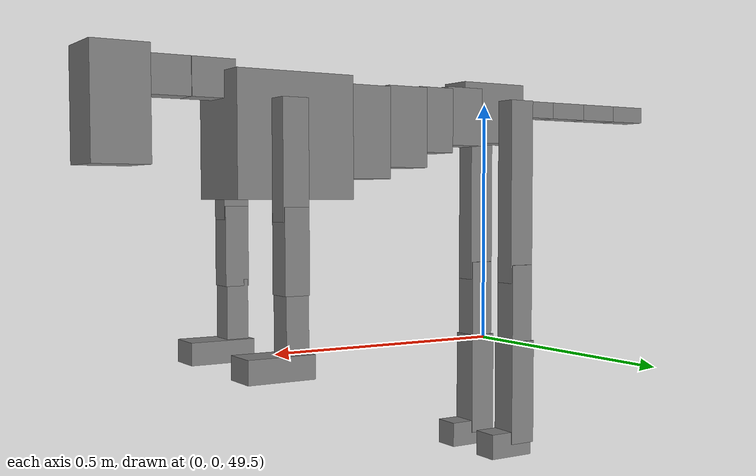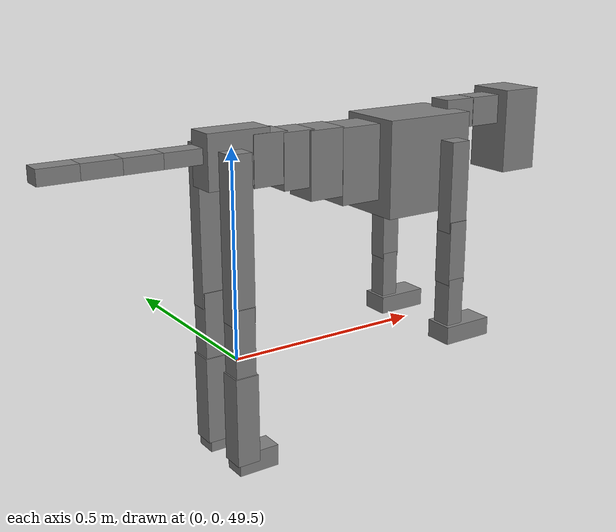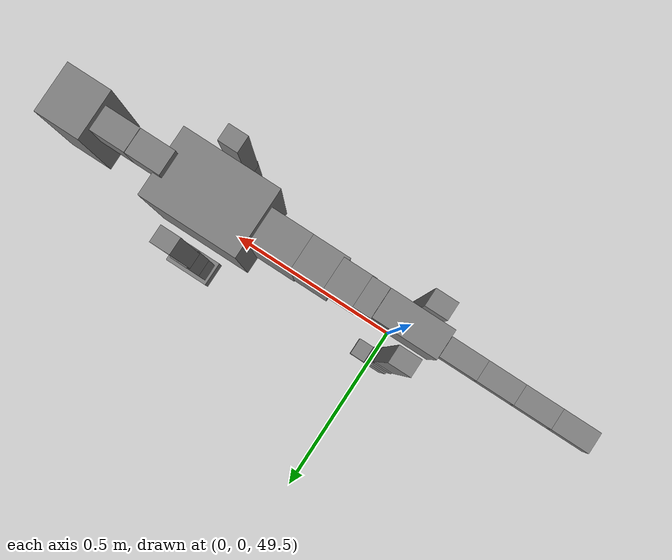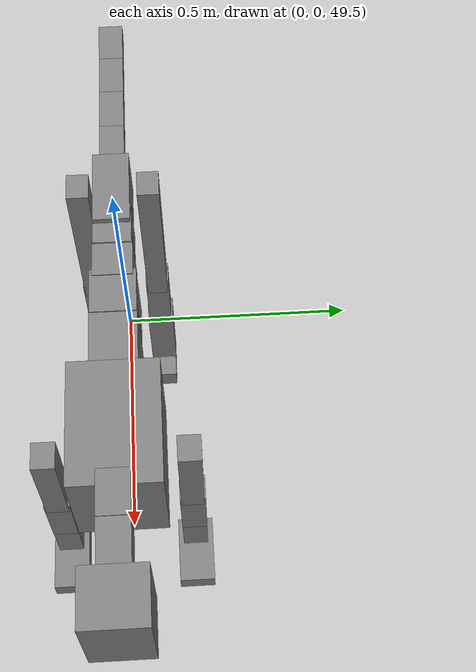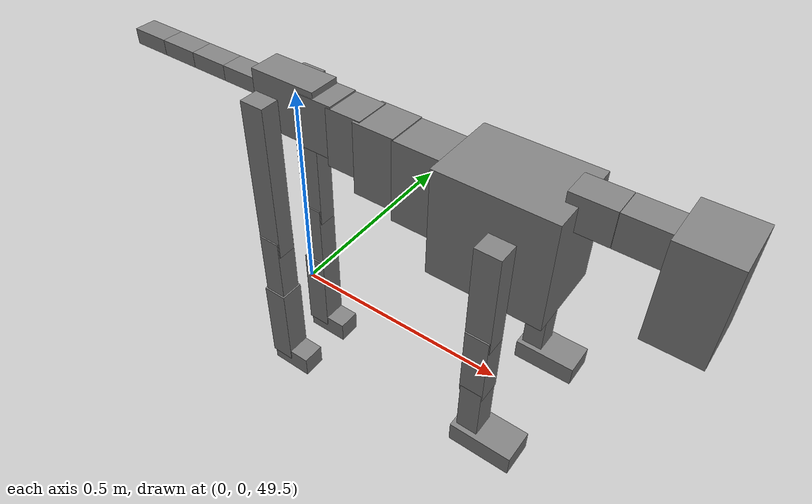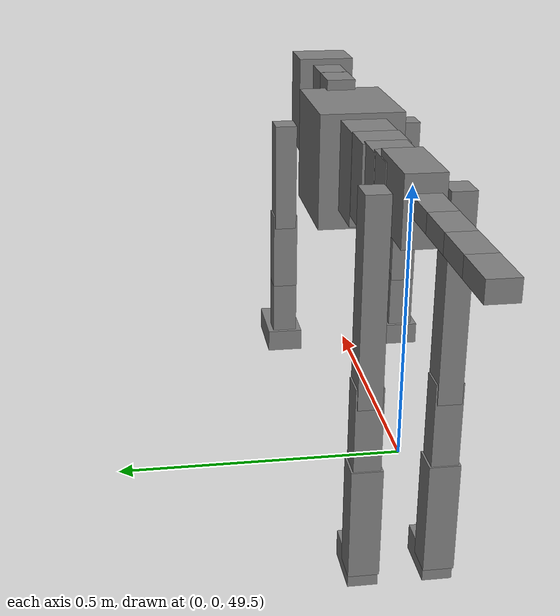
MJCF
<mujoco model="dog">

    <default>
        <joint armature="0.02" stiffness="1" damping="0.2" limited="true"/>
        <geom condim="3" friction="1 0.05 0.05" margin="0.01"/>
        <motor ctrllimited="true" ctrlrange="-1.0 1.0" forcelimited="true" gear="50"/>
    </default>

    <compiler inertiafromgeom="true" angle="radian"/>

    <option timestep="0.016" iterations="50" tolerance="1e-10" solver="Newton" jacobian="dense" cone="pyramidal"/>

    <size nconmax="20000" njmax="60000" nstack="5000000"/>
    <visual>
        <map force="0.1" zfar="30"/>
        <rgba haze="0.15 0.25 0.35 1"/>
        <quality shadowsize="2048"/>
        <global offwidth="800" offheight="800"/>
    </visual>

    <asset>
        <texture type="skybox" builtin="gradient" rgb1="0.3 0.5 0.7" rgb2="0 0 0" width="512" height="512"/>
        <texture name="texplane" type="2d" builtin="checker" rgb1=".2 .3 .4" rgb2=".1 0.15 0.2" width="512" height="512"
                 mark="cross" markrgb=".8 .8 .8"/>
        <texture name="texgeom" type="cube" builtin="flat" mark="cross" width="127" height="1278" rgb1="0.8 0.6 0.4"
                 rgb2="0.8 0.6 0.4" markrgb="1 1 1" random="0.01"/>

        <material name="matplane" reflectance="0.3" texture="texplane" texrepeat="1 1" texuniform="true"/>
        <material name="matgeom" texture="texgeom" texuniform="true" rgba="0.8 0.6 .4 1"/>
    </asset>

    <worldbody>
        <geom name="floor" pos="0 0 0" size="0 0 .25" type="plane" material="matplane" condim="3"/>

        <light directional="false" diffuse=".2 .2 .2" specular="0 0 0" pos="0 0 5" dir="0 0 -1" castshadow="false"/>
        <light mode="targetbodycom" target="torso" directional="false" diffuse=".8 .8 .8" specular="0.3 0.3 0.3"
               pos="0 0 4.0" dir="0 0 -1"/>

        <body name="root" pos="0 0 50">
            <freejoint name="root_1"/>
            <geom type="box" pos="0 0 -0.02" size="0.0774  0.0358  0.063" density="2030"/>

            <body name="spine1" pos="0.054 0 0">
                <joint name="spine1_y" axis="0 1 0" range="0 0.7" limited="true"/>
                <geom type="box" pos="0.02375 0 -0.03" size="0.04375  0.0375  0.05985" density="2030"/>

                <body name="spine2" pos="0.0612 0 0">
                    <joint name="spine2_y" axis="0 1 0" range="-0.15 0.15" limited="true"/>
                    <geom type="box" pos="0.03555  0  -0.04" size="0.04055  0.039  0.06615" density="2030"/>

                    <body name="spine3" pos="0.0730 0 0">
                        <joint name="spine3_y" axis="0 1 0" range="-0.15 0.15" limited="true"/>
                        <geom type="box" pos="0.03555  0  -0.057" size="0.04555  0.0445  0.081" density="2030"/>

                        <body name="spine4" pos="0.0780 0 0">
                            <joint name="spine4_y" axis="0 1 0" range="-0.15 0.15" limited="true"/>
                            <geom type="box" pos="0.05265  0  -0.07" size="0.05265  0.045  0.09135" density="2030"/>

                            <body name="torso" pos="0.1082 0 0">
                                <joint name="torso_y" axis="0 1 0" range="-0.15 0.15" limited="true"/>
                                <geom type="box" pos="0.11925  0  -0.085" size="0.11925  0.085  0.11745"
                                      density="2030"/>

                                <body name="neck1" pos="0.2160  0   0.0180">
                                    <joint name="neck1_y" axis="0 1 0" range="-1.2  -1" limited="true"/>
                                    <geom type="box" pos="0.0423  0  0" size="0.0423  0.03  0.036" density="2325"/>

                                    <body name="neck2" pos="0.0853  0  0">
                                        <joint name="neck2_y" axis="0 1 0" range="0.1  0" limited="true"/>
                                        <geom type="box" pos="0.0423  0  0" size="0.0423  0.03  0.036" density="2325"/>

                                        <body name="head" pos="0.0853  0  0">
                                            <joint name="head_y" axis="0 1 0" range="-0.3  -0.2" limited="true"/>
                                            <geom type="box" pos="0.0531  0  -0.055" size="0.0531  0.06  0.1044"
                                                  density="4030"/>

                                        </body>
                                    </body>
                                </body>

                                <body name="front_shoulder" pos="0.156  0   -0.0480">
                                    <joint name="front_shoulder_y" axis="0 1 0" range="-1 1.5" limited="true"/>
                                    <geom type="box" pos="0 0.13 -0.0838" size="0.0256  0.0219  0.1104" density="1158"/>
                                    <geom type="box" pos="0 -0.13 -0.0838" size="0.0256  0.0219  0.1104"
                                          density="1158"/>

                                    <body name="front_elbow" pos="0  0  -0.1675">
                                        <joint name="front_elbow_y" axis="0 1 0" range="-2 0" limited="true"/>
                                        <geom type="box" pos="0 0.13 -0.0790" size="0.0243  0.0249  0.0790"
                                              density="1081"/>
                                        <geom type="box" pos="0 -0.13 -0.0790" size="0.0243  0.0249  0.0790"
                                              density="1081"/>

                                        <body name="front_wrist" pos="0  0  -0.1581">
                                            <joint name="front_wrist_y" axis="0 1 0" range="-0.2 0" limited="true"/>
                                            <geom type="box" pos="0 0.13 -0.0601" size="0.0224  0.0249  0.0732"
                                                  density="1664"/>
                                            <geom type="box" pos="0 -0.13 -0.0601" size="0.0224  0.0249  0.0732"
                                                  density="1664"/>

                                            <body name="front_finger_end" pos="0  0  -0.1201">
                                                <joint name="front_finger_y" axis="0 1 0" range="-0.4 1"
                                                       limited="true"/>
                                                <geom type="box" pos="0.0359  0.13  -0.0073"
                                                      size="0.0658  0.0359  0.0223" density="1515"/>
                                                <geom type="box" pos="0.0359  -0.13  -0.0073"
                                                      size="0.0658  0.0359  0.0223" density="1515"/>

                                            </body>

                                        </body>
                                    </body>
                                </body>

                            </body>
                        </body>
                    </body>
                </body>
            </body>

            <body name="back_hip" pos="-0.03 0 -0.018">
                <joint name="back_hip_y" axis="0 1 0" range="-1.5 0.3" limited="true"/>
                <geom type="box" pos="0 0.07 -0.1688" size="0.0282  0.0221  0.1916" density="1154"/>
                <geom type="box" pos="0 -0.07 -0.1688" size="0.0282  0.0221  0.1916" density="1154"/>

                <body name="back_knee" pos="0  0  -0.3377">
                    <joint name="back_knee_y" axis="0 1 0" range="0 2.8" limited="true"/>
                    <geom type="box" pos="0 0.07 -0.0784" size="0.0255  0.0251  0.0939" density="1227"/>
                    <geom type="box" pos="0 -0.07 -0.0784" size="0.0255  0.0251  0.0939" density="1227"/>

                    <body name="back_ankle" pos="0  0  -0.1567">
                        <joint name="back_ankle_y" axis="0 1 0" range="-2.2 0" limited="true"/>
                        <geom type="box" pos="0 0.07 -0.0974" size="0.0288  0.0288  0.1086" density="1284"/>
                        <geom type="box" pos="0 -0.07 -0.0974" size="0.0288  0.0288  0.1086" density="1284"/>

                        <body name="back_toe_end" pos="0  0  -0.1948">
                            <joint name="back_toe_y" axis="0 1 0" range="-0.4 1" limited="true"/>
                            <geom type="box" pos="0.0277  0.07  -0.0110" size="0.0508  0.0277  0.0260" density="1515"/>
                            <geom type="box" pos="0.0277  -0.07  -0.0110" size="0.0508  0.0277  0.0260" density="1515"/>

                        </body>
                    </body>
                </body>
            </body>

            <body name="tail1" pos="-0.074 0 -0.006">
                <joint name="tail1_y" axis="0 1 0" range="-0.2 0.2" limited="true"/>
                <geom type="box" pos="-0.0536  0  0" size="0.045  0.025  0.0175" density="1587"/>

                <body name="tail2" pos="-0.09 0 0">
                    <joint name="tail2_y" axis="0 1 0" range="-0.2 0.2" limited="true"/>
                    <geom type="box" pos="-0.0536  0  0" size="0.045  0.025  0.0175" density="1587"/>

                    <body name="tail3" pos="-0.09 0 0">
                        <joint name="tail3_y" axis="0 1 0" range="-0.2 0.2" limited="true"/>
                        <geom type="box" pos="-0.0536  0  0" size="0.045  0.025  0.0175" density="1587"/>

                        <body name="tail4" pos="-0.09 0 0">
                            <joint name="tail4_y" axis="0 1 0" range="-0.2 0.2" limited="true"/>
                            <geom type="box" pos="-0.0536  0  0" size="0.045  0.025  0.0175" density="1587"/>

                        </body>
                    </body>
                </body>
            </body>
        </body>
    </worldbody>

    <actuator>
        <motor joint="spine1_y" forcerange="-150 150     "/>
        <motor joint="spine2_y" forcerange="-150 150     "/>
        <motor joint="spine3_y" forcerange="-150 150     "/>
        <motor joint="spine4_y" forcerange="-150 150     "/>
        <motor joint="torso_y" forcerange="-150 150     "/>
        <motor joint="neck1_y" forcerange="-100 100       "/>
        <motor joint="neck2_y" forcerange="-100 100       "/>
        <motor joint="head_y" forcerange="-150 150       "/>
        <motor joint="front_shoulder_y" forcerange="-111.65 134.17"/>
        <motor joint="front_elbow_y" forcerange="-116.02 164.86"/>
        <motor joint="front_wrist_y" forcerange="-143.97 55.44"/>
        <motor joint="front_finger_y" forcerange="-69.91 81.45"/>
        <motor joint="back_hip_y" forcerange="-250.95 243.99"/>
        <motor joint="back_knee_y" forcerange="-339.10 225.85"/>
        <motor joint="back_angle_y" forcerange="-217.99 142.60"/>
        <motor joint="back_toe_y" forcerange="-98.37 43.31"/>
        <motor joint="tail1_y" forcerange="-50 50     "/>
        <motor joint="tail2_y" forcerange="-50 50     "/>
        <motor joint="tail3_y" forcerange="-50 50     "/>
        <motor joint="tail4_y" forcerange="-50 50     "/>
    </actuator>
</mujoco>
